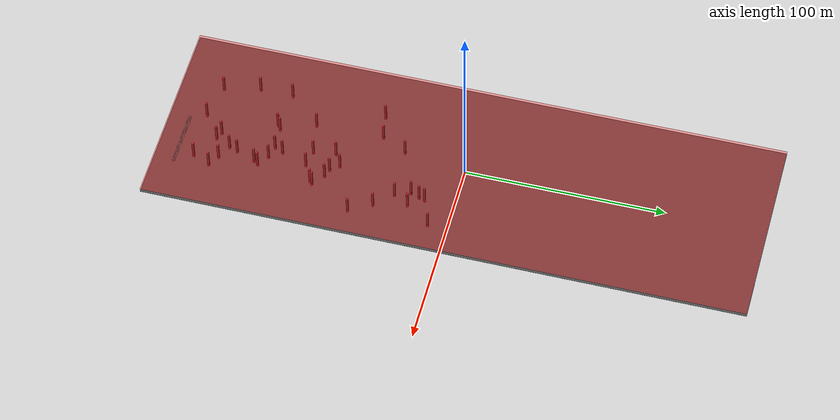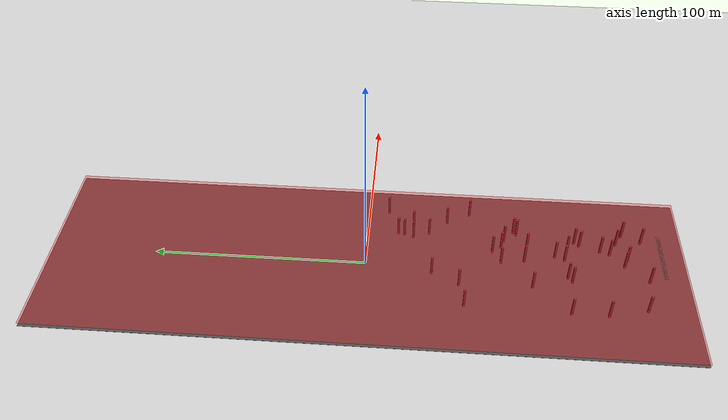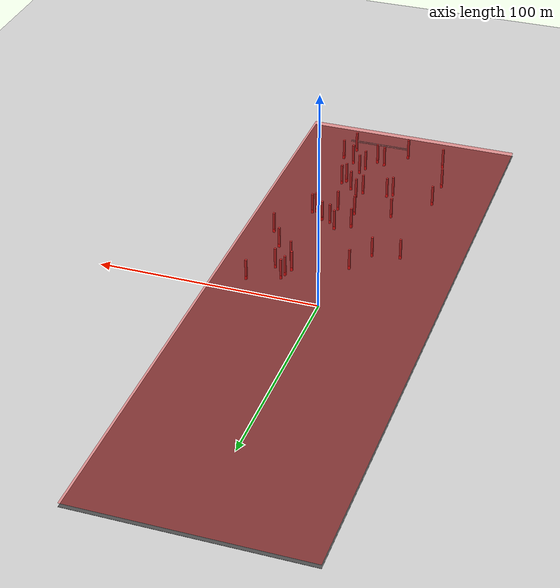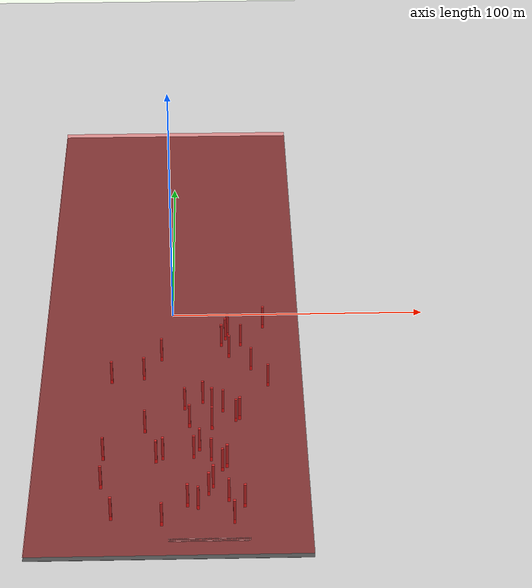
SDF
<sdf version="1.7">
 <world name="default">
  <model name="big_red_plane">
   <static>1</static>
   <link name="plane_link">
    <pose>0 0 1.8 0 0 0</pose>
    <collision name="plane_collision">
     <geometry><box><normal>0 0 1</normal><size>100 300 0.01</size></box></geometry>
    </collision>
    <visual name="plane_visual">
     <geometry><box><normal>0 0 1</normal><size>100 300 0.01</size></box></geometry>
     <material>
      <ambient>1 0 0 0.3</ambient>
      <diffuse>1 0 0 0.3</diffuse>
      <specular>0.5 0.5 0.5 0.3</specular>
     </material>
    </visual>
   </link>
  </model>
  <model name="ground_plane">
   <static>1</static>
   <link name="link">
    <collision name="collision">
     <geometry><plane><normal>0 0 1</normal><size>100 100</size></plane></geometry>
     <surface><friction><ode><mu>100</mu><mu2>50</mu2></ode></friction></surface>
    </collision>
    <visual name="visual">
     <cast_shadows>0</cast_shadows>
     <geometry><plane><normal>0 0 1</normal><size>100 100</size></plane></geometry>
     <material>
      <script><uri>file://media/materials/scripts/gazebo.material</uri><name>Gazebo/Grey</name></script>
     </material>
    </visual>
   </link>
  </model>
  <model name="asphalt_plane_long">
   <link name="link">
    <inertial>
     <mass>1</mass>
     <inertia><ixx>1</ixx><ixy>0</ixy><ixz>0</ixz><iyy>1</iyy><iyz>0</iyz><izz>1</izz></inertia>
    </inertial>
    <visual name="visual">
     <cast_shadows>0</cast_shadows>
     <geometry><box><size>100 300 0.1</size></box></geometry>
     <material>
      <script>
       <uri>model://asphalt_plane/materials/scripts</uri>
       <uri>model://asphalt_plane/materials/textures</uri>
       <name>vrc/asphalt</name>
      </script>
      <shader type="pixel"><normal_map>__default__</normal_map></shader>
      <ambient>0.5 0.5 0.5 1</ambient>
      <diffuse>0.5 0.5 0.5 1</diffuse>
      <specular>0.2 0.2 0.2 1</specular>
      <emissive>0 0 0 1</emissive>
     </material>
    </visual>
    <collision name="collision">
     <geometry><box><size>20 20 0.1</size></box></geometry>
     <surface>
      <friction>
       <ode><mu>1</mu><mu2>1</mu2><fdir1>0 0 0</fdir1><slip1>0</slip1><slip2>0</slip2></ode>
       <torsional>
        <coefficient>1</coefficient>
        <patch_radius>0</patch_radius>
        <surface_radius>0</surface_radius>
        <use_patch_radius>1</use_patch_radius>
        <ode><slip>0</slip></ode>
       </torsional>
      </friction>
      <bounce><restitution_coefficient>0</restitution_coefficient><threshold>1e+06</threshold></bounce>
      <contact>
       <collide_without_contact>0</collide_without_contact>
       <collide_without_contact_bitmask>1</collide_without_contact_bitmask>
       <collide_bitmask>1</collide_bitmask>
       <ode>
        <soft_cfm>0</soft_cfm>
        <soft_erp>0.2</soft_erp>
        <kp>1e+13</kp>
        <kd>1</kd>
        <max_vel>0.01</max_vel>
        <min_depth>0</min_depth>
       </ode>
       <bullet>
        <split_impulse>1</split_impulse>
        <split_impulse_penetration_threshold>-0.01</split_impulse_penetration_threshold>
        <soft_cfm>0</soft_cfm>
        <soft_erp>0.2</soft_erp>
        <kp>1e+13</kp>
        <kd>1</kd>
       </bullet>
      </contact>
     </surface>
    </collision>
   </link>
   <static>1</static>
  </model>
  <model name="rail">
   <frame name="track::__model__" attached_to="track::link">
    <pose relative_to="__model__">0 -140 0 0 -0 0</pose>
   </frame>
   <static>1</static>
   <link name="track::link">
    <collision name="collision">
     <geometry><mesh><uri>model://rails2</uri><scale>1 1 1</scale></mesh></geometry>
     <surface><friction><ode><mu>100</mu><mu2>50</mu2></ode></friction></surface>
    </collision>
    <visual name="visual">
     <cast_shadows>0</cast_shadows>
     <geometry><mesh><uri>model://rails2</uri><scale>1 1 1</scale></mesh></geometry>
    </visual>
    <pose relative_to="track::__model__">0 0 0 0 -0 0</pose>
   </link>
  </model>
  <model name="tall_box_clone_0">
   <pose>-24.5512 -94.038 -0.000571 0 -0 0</pose>
   <frame name="tall_rectangle::__model__" attached_to="tall_rectangle::link">
    <pose relative_to="__model__">0 0 0 0 -0 0</pose>
   </frame>
   <static>1</static>
   <link name="tall_rectangle::link">
    <collision name="collision">
     <geometry><box><size>1 1 10</size></box></geometry>
     <pose>0 0 5 0 -0 0</pose>
    </collision>
    <visual name="visual">
     <geometry><box><size>1 1 10</size></box></geometry>
     <pose>0 0 5 0 -0 0</pose>
     <material>
      <script><uri>file://media/materials/scripts/gazebo.material</uri><name>Gazebo/Red</name></script>
     </material>
    </visual>
    <pose relative_to="tall_rectangle::__model__">0 0 0 0 -0 0</pose>
   </link>
  </model>
  <model name="tall_box_clone_1">
   <pose>-5.20692 -96.1053 -0.000554 0 -0 0</pose>
   <frame name="tall_rectangle::__model__" attached_to="tall_rectangle::link">
    <pose relative_to="__model__">0 0 0 0 -0 0</pose>
   </frame>
   <static>1</static>
   <link name="tall_rectangle::link">
    <collision name="collision">
     <geometry><box><size>1 1 10</size></box></geometry>
     <pose>0 0 5 0 -0 0</pose>
    </collision>
    <visual name="visual">
     <geometry><box><size>1 1 10</size></box></geometry>
     <pose>0 0 5 0 -0 0</pose>
     <material>
      <script><uri>file://media/materials/scripts/gazebo.material</uri><name>Gazebo/Red</name></script>
     </material>
    </visual>
    <pose relative_to="tall_rectangle::__model__">0 0 0 0 -0 0</pose>
   </link>
  </model>
  <model name="tall_box_clone_2">
   <pose>-20.6012 -128.382 -0.001441 0 -0 0</pose>
   <frame name="tall_rectangle::__model__" attached_to="tall_rectangle::link">
    <pose relative_to="__model__">0 0 0 0 -0 0</pose>
   </frame>
   <static>1</static>
   <link name="tall_rectangle::link">
    <collision name="collision">
     <geometry><box><size>1 1 10</size></box></geometry>
     <pose>0 0 5 0 -0 0</pose>
    </collision>
    <visual name="visual">
     <geometry><box><size>1 1 10</size></box></geometry>
     <pose>0 0 5 0 -0 0</pose>
     <material>
      <script><uri>file://media/materials/scripts/gazebo.material</uri><name>Gazebo/Red</name></script>
     </material>
    </visual>
    <pose relative_to="tall_rectangle::__model__">0 0 0 0 -0 0</pose>
   </link>
  </model>
  <model name="tall_box_clone_5">
   <pose>-24.7503 -110.656 0.000918 0 -0 0</pose>
   <frame name="tall_rectangle::__model__" attached_to="tall_rectangle::link">
    <pose relative_to="__model__">0 0 0 0 -0 0</pose>
   </frame>
   <static>1</static>
   <link name="tall_rectangle::link">
    <collision name="collision">
     <geometry><box><size>1 1 10</size></box></geometry>
     <pose>0 0 5 0 -0 0</pose>
    </collision>
    <visual name="visual">
     <geometry><box><size>1 1 10</size></box></geometry>
     <pose>0 0 5 0 -0 0</pose>
     <material>
      <script><uri>file://media/materials/scripts/gazebo.material</uri><name>Gazebo/Red</name></script>
     </material>
    </visual>
    <pose relative_to="tall_rectangle::__model__">0 0 0 0 -0 0</pose>
   </link>
  </model>
  <model name="tall_box_clone_6">
   <pose>-2.6741 -131.806 0.000339 0 -0 0</pose>
   <frame name="tall_rectangle::__model__" attached_to="tall_rectangle::link">
    <pose relative_to="__model__">0 0 0 0 -0 0</pose>
   </frame>
   <static>1</static>
   <link name="tall_rectangle::link">
    <collision name="collision">
     <geometry><box><size>1 1 10</size></box></geometry>
     <pose>0 0 5 0 -0 0</pose>
    </collision>
    <visual name="visual">
     <geometry><box><size>1 1 10</size></box></geometry>
     <pose>0 0 5 0 -0 0</pose>
     <material>
      <script><uri>file://media/materials/scripts/gazebo.material</uri><name>Gazebo/Red</name></script>
     </material>
    </visual>
    <pose relative_to="tall_rectangle::__model__">0 0 0 0 -0 0</pose>
   </link>
  </model>
  <model name="tall_box_clone_7">
   <pose>-2.76985 -94.3517 -0.003949 0 -0 0</pose>
   <frame name="tall_rectangle::__model__" attached_to="tall_rectangle::link">
    <pose relative_to="__model__">0 0 0 0 -0 0</pose>
   </frame>
   <static>1</static>
   <link name="tall_rectangle::link">
    <collision name="collision">
     <geometry><box><size>1 1 10</size></box></geometry>
     <pose>0 0 5 0 -0 0</pose>
    </collision>
    <visual name="visual">
     <geometry><box><size>1 1 10</size></box></geometry>
     <pose>0 0 5 0 -0 0</pose>
     <material>
      <script><uri>file://media/materials/scripts/gazebo.material</uri><name>Gazebo/Red</name></script>
     </material>
    </visual>
    <pose relative_to="tall_rectangle::__model__">0 0 0 0 -0 0</pose>
   </link>
  </model>
  <model name="tall_box_clone_8">
   <pose>-22.8738 -46.0578 0.003746 0 -0 0</pose>
   <frame name="tall_rectangle::__model__" attached_to="tall_rectangle::link">
    <pose relative_to="__model__">0 0 0 0 -0 0</pose>
   </frame>
   <static>1</static>
   <link name="tall_rectangle::link">
    <collision name="collision">
     <geometry><box><size>1 1 10</size></box></geometry>
     <pose>0 0 5 0 -0 0</pose>
    </collision>
    <visual name="visual">
     <geometry><box><size>1 1 10</size></box></geometry>
     <pose>0 0 5 0 -0 0</pose>
     <material>
      <script><uri>file://media/materials/scripts/gazebo.material</uri><name>Gazebo/Red</name></script>
     </material>
    </visual>
    <pose relative_to="tall_rectangle::__model__">0 0 0 0 -0 0</pose>
   </link>
  </model>
  <model name="tall_box_clone_10">
   <pose>-4.01017 -31.1595 0.000522 0 -0 0</pose>
   <frame name="tall_rectangle::__model__" attached_to="tall_rectangle::link">
    <pose relative_to="__model__">0 0 0 0 -0 0</pose>
   </frame>
   <static>1</static>
   <link name="tall_rectangle::link">
    <collision name="collision">
     <geometry><box><size>1 1 10</size></box></geometry>
     <pose>0 0 5 0 -0 0</pose>
    </collision>
    <visual name="visual">
     <geometry><box><size>1 1 10</size></box></geometry>
     <pose>0 0 5 0 -0 0</pose>
     <material>
      <script><uri>file://media/materials/scripts/gazebo.material</uri><name>Gazebo/Red</name></script>
     </material>
    </visual>
    <pose relative_to="tall_rectangle::__model__">0 0 0 0 -0 0</pose>
   </link>
  </model>
  <model name="tall_box_clone_14">
   <pose>-9.62085 -77.6429 -0.002965 0 -0 0</pose>
   <frame name="tall_rectangle::__model__" attached_to="tall_rectangle::link">
    <pose relative_to="__model__">0 0 0 0 -0 0</pose>
   </frame>
   <static>1</static>
   <link name="tall_rectangle::link">
    <collision name="collision">
     <geometry><box><size>1 1 10</size></box></geometry>
     <pose>0 0 5 0 -0 0</pose>
    </collision>
    <visual name="visual">
     <geometry><box><size>1 1 10</size></box></geometry>
     <pose>0 0 5 0 -0 0</pose>
     <material>
      <script><uri>file://media/materials/scripts/gazebo.material</uri><name>Gazebo/Red</name></script>
     </material>
    </visual>
    <pose relative_to="tall_rectangle::__model__">0 0 0 0 -0 0</pose>
   </link>
  </model>
  <model name="tall_box_clone_18">
   <pose>-10.5749 -43.8238 0.003688 0 -0 0</pose>
   <frame name="tall_rectangle::__model__" attached_to="tall_rectangle::link">
    <pose relative_to="__model__">0 0 0 0 -0 0</pose>
   </frame>
   <static>1</static>
   <link name="tall_rectangle::link">
    <collision name="collision">
     <geometry><box><size>1 1 10</size></box></geometry>
     <pose>0 0 5 0 -0 0</pose>
    </collision>
    <visual name="visual">
     <geometry><box><size>1 1 10</size></box></geometry>
     <pose>0 0 5 0 -0 0</pose>
     <material>
      <script><uri>file://media/materials/scripts/gazebo.material</uri><name>Gazebo/Red</name></script>
     </material>
    </visual>
    <pose relative_to="tall_rectangle::__model__">0 0 0 0 -0 0</pose>
   </link>
  </model>
  <model name="tall_box_right1_clone_0">
   <pose>26.6099 -122.141 0.000854 0 -0 0</pose>
   <frame name="tall_rectangle::__model__" attached_to="tall_rectangle::link">
    <pose relative_to="__model__">0 0 0 0 -0 0</pose>
   </frame>
   <static>1</static>
   <link name="tall_rectangle::link">
    <collision name="collision">
     <geometry><box><size>1 1 10</size></box></geometry>
     <pose>0 0 5 0 -0 0</pose>
    </collision>
    <visual name="visual">
     <geometry><box><size>1 1 10</size></box></geometry>
     <pose>0 0 5 0 -0 0</pose>
     <material>
      <script><uri>file://media/materials/scripts/gazebo.material</uri><name>Gazebo/Red</name></script>
     </material>
    </visual>
    <pose relative_to="tall_rectangle::__model__">0 0 0 0 -0 0</pose>
   </link>
  </model>
  <model name="tall_box_right1_clone_1">
   <pose>8.53225 -93.6332 0.003912 0 -0 0</pose>
   <frame name="tall_rectangle::__model__" attached_to="tall_rectangle::link">
    <pose relative_to="__model__">0 0 0 0 -0 0</pose>
   </frame>
   <static>1</static>
   <link name="tall_rectangle::link">
    <collision name="collision">
     <geometry><box><size>1 1 10</size></box></geometry>
     <pose>0 0 5 0 -0 0</pose>
    </collision>
    <visual name="visual">
     <geometry><box><size>1 1 10</size></box></geometry>
     <pose>0 0 5 0 -0 0</pose>
     <material>
      <script><uri>file://media/materials/scripts/gazebo.material</uri><name>Gazebo/Red</name></script>
     </material>
    </visual>
    <pose relative_to="tall_rectangle::__model__">0 0 0 0 -0 0</pose>
   </link>
  </model>
  <model name="tall_box_right1_clone_2">
   <pose>22.843 -130.898 -0.003009 0 -0 0</pose>
   <frame name="tall_rectangle::__model__" attached_to="tall_rectangle::link">
    <pose relative_to="__model__">0 0 0 0 -0 0</pose>
   </frame>
   <static>1</static>
   <link name="tall_rectangle::link">
    <collision name="collision">
     <geometry><box><size>1 1 10</size></box></geometry>
     <pose>0 0 5 0 -0 0</pose>
    </collision>
    <visual name="visual">
     <geometry><box><size>1 1 10</size></box></geometry>
     <pose>0 0 5 0 -0 0</pose>
     <material>
      <script><uri>file://media/materials/scripts/gazebo.material</uri><name>Gazebo/Red</name></script>
     </material>
    </visual>
    <pose relative_to="tall_rectangle::__model__">0 0 0 0 -0 0</pose>
   </link>
  </model>
  <model name="tall_box_right1_clone_3">
   <pose>20.968 -118.801 0.002417 0 -0 0</pose>
   <frame name="tall_rectangle::__model__" attached_to="tall_rectangle::link">
    <pose relative_to="__model__">0 0 0 0 -0 0</pose>
   </frame>
   <static>1</static>
   <link name="tall_rectangle::link">
    <collision name="collision">
     <geometry><box><size>1 1 10</size></box></geometry>
     <pose>0 0 5 0 -0 0</pose>
    </collision>
    <visual name="visual">
     <geometry><box><size>1 1 10</size></box></geometry>
     <pose>0 0 5 0 -0 0</pose>
     <material>
      <script><uri>file://media/materials/scripts/gazebo.material</uri><name>Gazebo/Red</name></script>
     </material>
    </visual>
    <pose relative_to="tall_rectangle::__model__">0 0 0 0 -0 0</pose>
   </link>
  </model>
  <model name="tall_box_right1_clone_4">
   <pose>10.6142 -89.2719 0.004563 0 -0 0</pose>
   <frame name="tall_rectangle::__model__" attached_to="tall_rectangle::link">
    <pose relative_to="__model__">0 0 0 0 -0 0</pose>
   </frame>
   <static>1</static>
   <link name="tall_rectangle::link">
    <collision name="collision">
     <geometry><box><size>1 1 10</size></box></geometry>
     <pose>0 0 5 0 -0 0</pose>
    </collision>
    <visual name="visual">
     <geometry><box><size>1 1 10</size></box></geometry>
     <pose>0 0 5 0 -0 0</pose>
     <material>
      <script><uri>file://media/materials/scripts/gazebo.material</uri><name>Gazebo/Red</name></script>
     </material>
    </visual>
    <pose relative_to="tall_rectangle::__model__">0 0 0 0 -0 0</pose>
   </link>
  </model>
  <model name="tall_box_right1_clone_5">
   <pose>15.2898 -64.0803 -0.000205 0 -0 0</pose>
   <frame name="tall_rectangle::__model__" attached_to="tall_rectangle::link">
    <pose relative_to="__model__">0 0 0 0 -0 0</pose>
   </frame>
   <static>1</static>
   <link name="tall_rectangle::link">
    <collision name="collision">
     <geometry><box><size>1 1 10</size></box></geometry>
     <pose>0 0 5 0 -0 0</pose>
    </collision>
    <visual name="visual">
     <geometry><box><size>1 1 10</size></box></geometry>
     <pose>0 0 5 0 -0 0</pose>
     <material>
      <script><uri>file://media/materials/scripts/gazebo.material</uri><name>Gazebo/Red</name></script>
     </material>
    </visual>
    <pose relative_to="tall_rectangle::__model__">0 0 0 0 -0 0</pose>
   </link>
  </model>
  <model name="tall_box_right1_clone_6">
   <pose>20.569 -99.1149 0.00287 0 -0 0</pose>
   <frame name="tall_rectangle::__model__" attached_to="tall_rectangle::link">
    <pose relative_to="__model__">0 0 0 0 -0 0</pose>
   </frame>
   <static>1</static>
   <link name="tall_rectangle::link">
    <collision name="collision">
     <geometry><box><size>1 1 10</size></box></geometry>
     <pose>0 0 5 0 -0 0</pose>
    </collision>
    <visual name="visual">
     <geometry><box><size>1 1 10</size></box></geometry>
     <pose>0 0 5 0 -0 0</pose>
     <material>
      <script><uri>file://media/materials/scripts/gazebo.material</uri><name>Gazebo/Red</name></script>
     </material>
    </visual>
    <pose relative_to="tall_rectangle::__model__">0 0 0 0 -0 0</pose>
   </link>
  </model>
  <model name="tall_box_right1_clone_7">
   <pose>15.483 -110.918 0.001759 0 -0 0</pose>
   <frame name="tall_rectangle::__model__" attached_to="tall_rectangle::link">
    <pose relative_to="__model__">0 0 0 0 -0 0</pose>
   </frame>
   <static>1</static>
   <link name="tall_rectangle::link">
    <collision name="collision">
     <geometry><box><size>1 1 10</size></box></geometry>
     <pose>0 0 5 0 -0 0</pose>
    </collision>
    <visual name="visual">
     <geometry><box><size>1 1 10</size></box></geometry>
     <pose>0 0 5 0 -0 0</pose>
     <material>
      <script><uri>file://media/materials/scripts/gazebo.material</uri><name>Gazebo/Red</name></script>
     </material>
    </visual>
    <pose relative_to="tall_rectangle::__model__">0 0 0 0 -0 0</pose>
   </link>
  </model>
  <model name="tall_box_right1_clone_8">
   <pose>25.6106 -70.1663 -0.00248 0 -0 0</pose>
   <frame name="tall_rectangle::__model__" attached_to="tall_rectangle::link">
    <pose relative_to="__model__">0 0 0 0 -0 0</pose>
   </frame>
   <static>1</static>
   <link name="tall_rectangle::link">
    <collision name="collision">
     <geometry><box><size>1 1 10</size></box></geometry>
     <pose>0 0 5 0 -0 0</pose>
    </collision>
    <visual name="visual">
     <geometry><box><size>1 1 10</size></box></geometry>
     <pose>0 0 5 0 -0 0</pose>
     <material>
      <script><uri>file://media/materials/scripts/gazebo.material</uri><name>Gazebo/Red</name></script>
     </material>
    </visual>
    <pose relative_to="tall_rectangle::__model__">0 0 0 0 -0 0</pose>
   </link>
  </model>
  <model name="tall_box_right1_clone_9">
   <pose>14.8809 -95.1818 -0.003836 0 -0 0</pose>
   <frame name="tall_rectangle::__model__" attached_to="tall_rectangle::link">
    <pose relative_to="__model__">0 0 0 0 -0 0</pose>
   </frame>
   <static>1</static>
   <link name="tall_rectangle::link">
    <collision name="collision">
     <geometry><box><size>1 1 10</size></box></geometry>
     <pose>0 0 5 0 -0 0</pose>
    </collision>
    <visual name="visual">
     <geometry><box><size>1 1 10</size></box></geometry>
     <pose>0 0 5 0 -0 0</pose>
     <material>
      <script><uri>file://media/materials/scripts/gazebo.material</uri><name>Gazebo/Red</name></script>
     </material>
    </visual>
    <pose relative_to="tall_rectangle::__model__">0 0 0 0 -0 0</pose>
   </link>
  </model>
  <model name="tall_box_right1_clone_10">
   <pose>11.8813 -59.8091 0.003992 0 -0 0</pose>
   <frame name="tall_rectangle::__model__" attached_to="tall_rectangle::link">
    <pose relative_to="__model__">0 0 0 0 -0 0</pose>
   </frame>
   <static>1</static>
   <link name="tall_rectangle::link">
    <collision name="collision">
     <geometry><box><size>1 1 10</size></box></geometry>
     <pose>0 0 5 0 -0 0</pose>
    </collision>
    <visual name="visual">
     <geometry><box><size>1 1 10</size></box></geometry>
     <pose>0 0 5 0 -0 0</pose>
     <material>
      <script><uri>file://media/materials/scripts/gazebo.material</uri><name>Gazebo/Red</name></script>
     </material>
    </visual>
    <pose relative_to="tall_rectangle::__model__">0 0 0 0 -0 0</pose>
   </link>
  </model>
  <model name="tall_box_right1_clone_11">
   <pose>6.89856 -74.6685 -0.003091 0 -0 0</pose>
   <frame name="tall_rectangle::__model__" attached_to="tall_rectangle::link">
    <pose relative_to="__model__">0 0 0 0 -0 0</pose>
   </frame>
   <static>1</static>
   <link name="tall_rectangle::link">
    <collision name="collision">
     <geometry><box><size>1 1 10</size></box></geometry>
     <pose>0 0 5 0 -0 0</pose>
    </collision>
    <visual name="visual">
     <geometry><box><size>1 1 10</size></box></geometry>
     <pose>0 0 5 0 -0 0</pose>
     <material>
      <script><uri>file://media/materials/scripts/gazebo.material</uri><name>Gazebo/Red</name></script>
     </material>
    </visual>
    <pose relative_to="tall_rectangle::__model__">0 0 0 0 -0 0</pose>
   </link>
  </model>
  <model name="tall_box_right1_clone_12">
   <pose>19.4264 -65.4831 -0.002482 0 -0 0</pose>
   <frame name="tall_rectangle::__model__" attached_to="tall_rectangle::link">
    <pose relative_to="__model__">0 0 0 0 -0 0</pose>
   </frame>
   <static>1</static>
   <link name="tall_rectangle::link">
    <collision name="collision">
     <geometry><box><size>1 1 10</size></box></geometry>
     <pose>0 0 5 0 -0 0</pose>
    </collision>
    <visual name="visual">
     <geometry><box><size>1 1 10</size></box></geometry>
     <pose>0 0 5 0 -0 0</pose>
     <material>
      <script><uri>file://media/materials/scripts/gazebo.material</uri><name>Gazebo/Red</name></script>
     </material>
    </visual>
    <pose relative_to="tall_rectangle::__model__">0 0 0 0 -0 0</pose>
   </link>
  </model>
  <model name="tall_box_right1_clone_13">
   <pose>10.0696 -122.983 0.003759 0 -0 0</pose>
   <frame name="tall_rectangle::__model__" attached_to="tall_rectangle::link">
    <pose relative_to="__model__">0 0 0 0 -0 0</pose>
   </frame>
   <static>1</static>
   <link name="tall_rectangle::link">
    <collision name="collision">
     <geometry><box><size>1 1 10</size></box></geometry>
     <pose>0 0 5 0 -0 0</pose>
    </collision>
    <visual name="visual">
     <geometry><box><size>1 1 10</size></box></geometry>
     <pose>0 0 5 0 -0 0</pose>
     <material>
      <script><uri>file://media/materials/scripts/gazebo.material</uri><name>Gazebo/Red</name></script>
     </material>
    </visual>
    <pose relative_to="tall_rectangle::__model__">0 0 0 0 -0 0</pose>
   </link>
  </model>
  <model name="tall_box_right1_clone_14">
   <pose>5.10956 -63.6483 -0.004621 0 -0 0</pose>
   <frame name="tall_rectangle::__model__" attached_to="tall_rectangle::link">
    <pose relative_to="__model__">0 0 0 0 -0 0</pose>
   </frame>
   <static>1</static>
   <link name="tall_rectangle::link">
    <collision name="collision">
     <geometry><box><size>1 1 10</size></box></geometry>
     <pose>0 0 5 0 -0 0</pose>
    </collision>
    <visual name="visual">
     <geometry><box><size>1 1 10</size></box></geometry>
     <pose>0 0 5 0 -0 0</pose>
     <material>
      <script><uri>file://media/materials/scripts/gazebo.material</uri><name>Gazebo/Red</name></script>
     </material>
    </visual>
    <pose relative_to="tall_rectangle::__model__">0 0 0 0 -0 0</pose>
   </link>
  </model>
  <model name="tall_box_right1_clone_15">
   <pose>6.33056 -121.502 0.001837 0 -0 0</pose>
   <frame name="tall_rectangle::__model__" attached_to="tall_rectangle::link">
    <pose relative_to="__model__">0 0 0 0 -0 0</pose>
   </frame>
   <static>1</static>
   <link name="tall_rectangle::link">
    <collision name="collision">
     <geometry><box><size>1 1 10</size></box></geometry>
     <pose>0 0 5 0 -0 0</pose>
    </collision>
    <visual name="visual">
     <geometry><box><size>1 1 10</size></box></geometry>
     <pose>0 0 5 0 -0 0</pose>
     <material>
      <script><uri>file://media/materials/scripts/gazebo.material</uri><name>Gazebo/Red</name></script>
     </material>
    </visual>
    <pose relative_to="tall_rectangle::__model__">0 0 0 0 -0 0</pose>
   </link>
  </model>
  <model name="tall_box_right1_clone_16">
   <pose>15.2322 -76.1326 0.000991 0 -0 0</pose>
   <frame name="tall_rectangle::__model__" attached_to="tall_rectangle::link">
    <pose relative_to="__model__">0 0 0 0 -0 0</pose>
   </frame>
   <static>1</static>
   <link name="tall_rectangle::link">
    <collision name="collision">
     <geometry><box><size>1 1 10</size></box></geometry>
     <pose>0 0 5 0 -0 0</pose>
    </collision>
    <visual name="visual">
     <geometry><box><size>1 1 10</size></box></geometry>
     <pose>0 0 5 0 -0 0</pose>
     <material>
      <script><uri>file://media/materials/scripts/gazebo.material</uri><name>Gazebo/Red</name></script>
     </material>
    </visual>
    <pose relative_to="tall_rectangle::__model__">0 0 0 0 -0 0</pose>
   </link>
  </model>
  <model name="tall_box_right1_clone_17">
   <pose>24.1858 -71.5481 0.002473 0 -0 0</pose>
   <frame name="tall_rectangle::__model__" attached_to="tall_rectangle::link">
    <pose relative_to="__model__">0 0 0 0 -0 0</pose>
   </frame>
   <static>1</static>
   <link name="tall_rectangle::link">
    <collision name="collision">
     <geometry><box><size>1 1 10</size></box></geometry>
     <pose>0 0 5 0 -0 0</pose>
    </collision>
    <visual name="visual">
     <geometry><box><size>1 1 10</size></box></geometry>
     <pose>0 0 5 0 -0 0</pose>
     <material>
      <script><uri>file://media/materials/scripts/gazebo.material</uri><name>Gazebo/Red</name></script>
     </material>
    </visual>
    <pose relative_to="tall_rectangle::__model__">0 0 0 0 -0 0</pose>
   </link>
  </model>
  <model name="tall_box_right1_clone_18">
   <pose>18.9107 -101.372 -0.002236 0 -0 0</pose>
   <frame name="tall_rectangle::__model__" attached_to="tall_rectangle::link">
    <pose relative_to="__model__">0 0 0 0 -0 0</pose>
   </frame>
   <static>1</static>
   <link name="tall_rectangle::link">
    <collision name="collision">
     <geometry><box><size>1 1 10</size></box></geometry>
     <pose>0 0 5 0 -0 0</pose>
    </collision>
    <visual name="visual">
     <geometry><box><size>1 1 10</size></box></geometry>
     <pose>0 0 5 0 -0 0</pose>
     <material>
      <script><uri>file://media/materials/scripts/gazebo.material</uri><name>Gazebo/Red</name></script>
     </material>
    </visual>
    <pose relative_to="tall_rectangle::__model__">0 0 0 0 -0 0</pose>
   </link>
  </model>
  <model name="tall_box_right1_clone_19">
   <pose>13.8564 -115.282 -0.002726 0 -0 0</pose>
   <frame name="tall_rectangle::__model__" attached_to="tall_rectangle::link">
    <pose relative_to="__model__">0 0 0 0 -0 0</pose>
   </frame>
   <static>1</static>
   <link name="tall_rectangle::link">
    <collision name="collision">
     <geometry><box><size>1 1 10</size></box></geometry>
     <pose>0 0 5 0 -0 0</pose>
    </collision>
    <visual name="visual">
     <geometry><box><size>1 1 10</size></box></geometry>
     <pose>0 0 5 0 -0 0</pose>
     <material>
      <script><uri>file://media/materials/scripts/gazebo.material</uri><name>Gazebo/Red</name></script>
     </material>
    </visual>
    <pose relative_to="tall_rectangle::__model__">0 0 0 0 -0 0</pose>
   </link>
  </model>
  <model name="tall_box_right2_clone_4">
   <pose>21.6859 -14.5804 -0.002265 0 -0 0</pose>
   <frame name="tall_rectangle::__model__" attached_to="tall_rectangle::link">
    <pose relative_to="__model__">0 0 0 0 -0 0</pose>
   </frame>
   <static>1</static>
   <link name="tall_rectangle::link">
    <collision name="collision">
     <geometry><box><size>1 1 10</size></box></geometry>
     <pose>0 0 5 0 -0 0</pose>
    </collision>
    <visual name="visual">
     <geometry><box><size>1 1 10</size></box></geometry>
     <pose>0 0 5 0 -0 0</pose>
     <material>
      <script><uri>file://media/materials/scripts/gazebo.material</uri><name>Gazebo/Red</name></script>
     </material>
    </visual>
    <pose relative_to="tall_rectangle::__model__">0 0 0 0 -0 0</pose>
   </link>
  </model>
  <model name="tall_box_right2_clone_5">
   <pose>35.7812 -9.39661 0.000304 0 -0 0</pose>
   <frame name="tall_rectangle::__model__" attached_to="tall_rectangle::link">
    <pose relative_to="__model__">0 0 0 0 -0 0</pose>
   </frame>
   <static>1</static>
   <link name="tall_rectangle::link">
    <collision name="collision">
     <geometry><box><size>1 1 10</size></box></geometry>
     <pose>0 0 5 0 -0 0</pose>
    </collision>
    <visual name="visual">
     <geometry><box><size>1 1 10</size></box></geometry>
     <pose>0 0 5 0 -0 0</pose>
     <material>
      <script><uri>file://media/materials/scripts/gazebo.material</uri><name>Gazebo/Red</name></script>
     </material>
    </visual>
    <pose relative_to="tall_rectangle::__model__">0 0 0 0 -0 0</pose>
   </link>
  </model>
  <model name="tall_box_right2_clone_8">
   <pose>19.2651 -21.9594 -0.002753 0 -0 0</pose>
   <frame name="tall_rectangle::__model__" attached_to="tall_rectangle::link">
    <pose relative_to="__model__">0 0 0 0 -0 0</pose>
   </frame>
   <static>1</static>
   <link name="tall_rectangle::link">
    <collision name="collision">
     <geometry><box><size>1 1 10</size></box></geometry>
     <pose>0 0 5 0 -0 0</pose>
    </collision>
    <visual name="visual">
     <geometry><box><size>1 1 10</size></box></geometry>
     <pose>0 0 5 0 -0 0</pose>
     <material>
      <script><uri>file://media/materials/scripts/gazebo.material</uri><name>Gazebo/Red</name></script>
     </material>
    </visual>
    <pose relative_to="tall_rectangle::__model__">0 0 0 0 -0 0</pose>
   </link>
  </model>
  <model name="tall_box_right2_clone_9">
   <pose>22.1899 -29.5038 -0.001493 0 -0 0</pose>
   <frame name="tall_rectangle::__model__" attached_to="tall_rectangle::link">
    <pose relative_to="__model__">0 0 0 0 -0 0</pose>
   </frame>
   <static>1</static>
   <link name="tall_rectangle::link">
    <collision name="collision">
     <geometry><box><size>1 1 10</size></box></geometry>
     <pose>0 0 5 0 -0 0</pose>
    </collision>
    <visual name="visual">
     <geometry><box><size>1 1 10</size></box></geometry>
     <pose>0 0 5 0 -0 0</pose>
     <material>
      <script><uri>file://media/materials/scripts/gazebo.material</uri><name>Gazebo/Red</name></script>
     </material>
    </visual>
    <pose relative_to="tall_rectangle::__model__">0 0 0 0 -0 0</pose>
   </link>
  </model>
  <model name="tall_box_right2_clone_12">
   <pose>20.8532 -17.5352 -0.001583 0 -0 0</pose>
   <frame name="tall_rectangle::__model__" attached_to="tall_rectangle::link">
    <pose relative_to="__model__">0 0 0 0 -0 0</pose>
   </frame>
   <static>1</static>
   <link name="tall_rectangle::link">
    <collision name="collision">
     <geometry><box><size>1 1 10</size></box></geometry>
     <pose>0 0 5 0 -0 0</pose>
    </collision>
    <visual name="visual">
     <geometry><box><size>1 1 10</size></box></geometry>
     <pose>0 0 5 0 -0 0</pose>
     <material>
      <script><uri>file://media/materials/scripts/gazebo.material</uri><name>Gazebo/Red</name></script>
     </material>
    </visual>
    <pose relative_to="tall_rectangle::__model__">0 0 0 0 -0 0</pose>
   </link>
  </model>
  <model name="tall_box_right2_clone_15">
   <pose>30.5932 -38.1441 0.000201 0 -0 0</pose>
   <frame name="tall_rectangle::__model__" attached_to="tall_rectangle::link">
    <pose relative_to="__model__">0 0 0 0 -0 0</pose>
   </frame>
   <static>1</static>
   <link name="tall_rectangle::link">
    <collision name="collision">
     <geometry><box><size>1 1 10</size></box></geometry>
     <pose>0 0 5 0 -0 0</pose>
    </collision>
    <visual name="visual">
     <geometry><box><size>1 1 10</size></box></geometry>
     <pose>0 0 5 0 -0 0</pose>
     <material>
      <script><uri>file://media/materials/scripts/gazebo.material</uri><name>Gazebo/Red</name></script>
     </material>
    </visual>
    <pose relative_to="tall_rectangle::__model__">0 0 0 0 -0 0</pose>
   </link>
  </model>
  <model name="tall_box_right2_clone_16">
   <pose>26.7455 -21.8765 -0.00078 0 -0 0</pose>
   <frame name="tall_rectangle::__model__" attached_to="tall_rectangle::link">
    <pose relative_to="__model__">0 0 0 0 -0 0</pose>
   </frame>
   <static>1</static>
   <link name="tall_rectangle::link">
    <collision name="collision">
     <geometry><box><size>1 1 10</size></box></geometry>
     <pose>0 0 5 0 -0 0</pose>
    </collision>
    <visual name="visual">
     <geometry><box><size>1 1 10</size></box></geometry>
     <pose>0 0 5 0 -0 0</pose>
     <material>
      <script><uri>file://media/materials/scripts/gazebo.material</uri><name>Gazebo/Red</name></script>
     </material>
    </visual>
    <pose relative_to="tall_rectangle::__model__">0 0 0 0 -0 0</pose>
   </link>
  </model>
  <model name="tall_box_right2_clone_17">
   <pose>36.7915 -49.1118 -0.002977 0 -0 0</pose>
   <frame name="tall_rectangle::__model__" attached_to="tall_rectangle::link">
    <pose relative_to="__model__">0 0 0 0 -0 0</pose>
   </frame>
   <static>1</static>
   <link name="tall_rectangle::link">
    <collision name="collision">
     <geometry><box><size>1 1 10</size></box></geometry>
     <pose>0 0 5 0 -0 0</pose>
    </collision>
    <visual name="visual">
     <geometry><box><size>1 1 10</size></box></geometry>
     <pose>0 0 5 0 -0 0</pose>
     <material>
      <script><uri>file://media/materials/scripts/gazebo.material</uri><name>Gazebo/Red</name></script>
     </material>
    </visual>
    <pose relative_to="tall_rectangle::__model__">0 0 0 0 -0 0</pose>
   </link>
  </model>
 </world>
</sdf>
